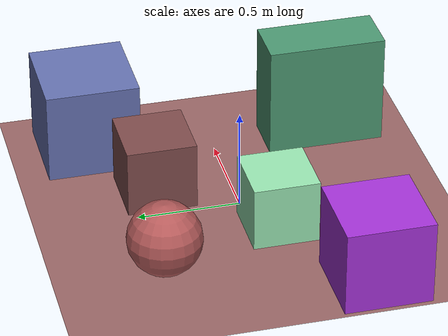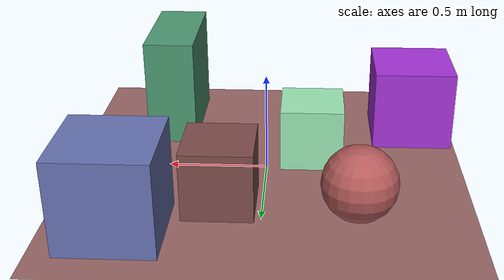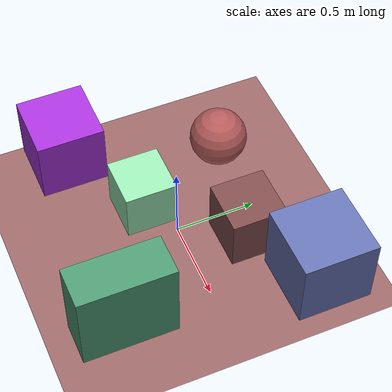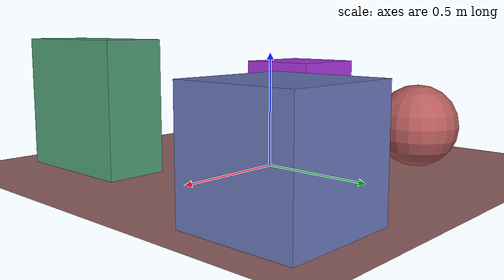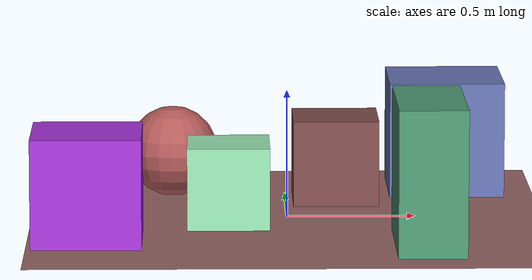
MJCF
<mujoco>
   <asset>
<texture type="skybox" builtin="gradient" rgb1="0.5 0.4 1.0" rgb2="0.3 0.6 0.3" width="256" height="256"/>
<texture name="checker_0" builtin="checker" type="2d" rgb1="0.4 0.6 0.1" rgb2="0.2 0.6 0.8" width="200" height="200"/>
<texture name="flat_1" builtin="flat" rgb1="0.5 0.3 0.3" rgb2="0.5 0.3 0.3"  width="200" height="200"/>
<texture name="checker_2" builtin="checker" type="2d" rgb1="0.8 0.7 0.3" rgb2="0.6 0.0 0.4" width="200" height="200"/>
<texture name="checker_3" builtin="checker" type="2d" rgb1="0.4 0.1 0.8" rgb2="0.9 0.3 0.9" width="200" height="200"/>
<texture name="flat_4" builtin="flat" rgb1="0.6 0.9 0.7" rgb2="0.6 0.9 0.7"  width="200" height="200"/>
<texture name="checker_5" builtin="checker" type="2d" rgb1="0.2 0.4 1.0" rgb2="0.6 0.5 0.4" width="200" height="200"/><material name="checker_0_mat" reflectance="0" texrepeat="5 5" texture="checker_0" texuniform="false" />
<material name="flat_1_mat" reflectance="0" texture="flat_1" texuniform="true"/>
<material name="checker_2_mat" reflectance="0" texrepeat="7 7" texture="checker_2" texuniform="false" />
<material name="checker_3_mat" reflectance="0" texrepeat="6 6" texture="checker_3" texuniform="false" />
<material name="flat_4_mat" reflectance="0" texture="flat_4" texuniform="true"/>
<material name="checker_5_mat" reflectance="0" texrepeat="9 9" texture="checker_5" texuniform="false" />
   </asset>

   <worldbody>
      <light diffuse=".9 .9 .9" pos="0 0 3" dir="0 0 -1"/>
     <geom type="plane" size="1 1 0.1" rgba="0.6 0.4 0.4 1"/>
<geom type="box" pos="0.53 -0.55 0.28" size="0.13 0.29 0.28" material="checker_0_mat" />
<geom type="box" pos="0.2 0.37 0.17" size="0.17 0.17 0.17" material="flat_1_mat" />
<geom type="sphere" pos="-0.45 0.47 0.18" size="0.18 0.18 0.18" material="checker_2_mat" />
<geom type="box" pos="-0.77 -0.45 0.21" size="0.21 0.21 0.21" material="checker_3_mat" />
<geom type="box" pos="-0.23 -0.13 0.16" size="0.16 0.16 0.16" material="flat_4_mat" />
<geom type="box" pos="0.65 0.62 0.23" size="0.23 0.23 0.23" material="checker_5_mat" /><camera euler="60 0 180" fovy="60" name="camera_a" pos="0 -1.5 1"></camera>   </worldbody>
</mujoco>
